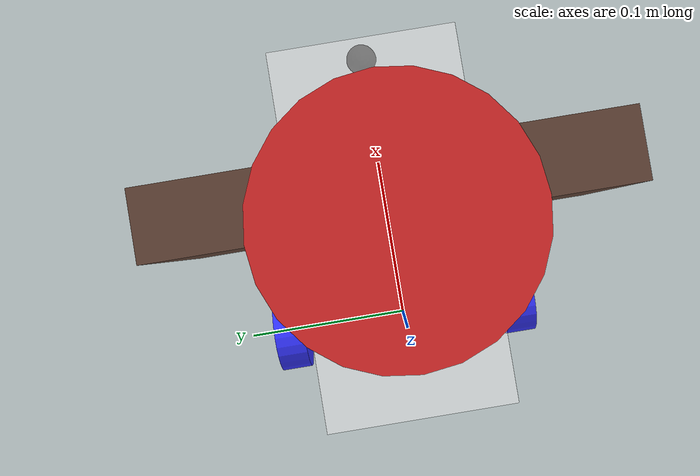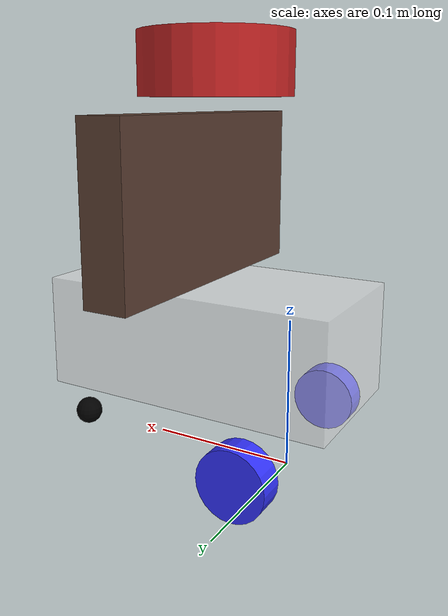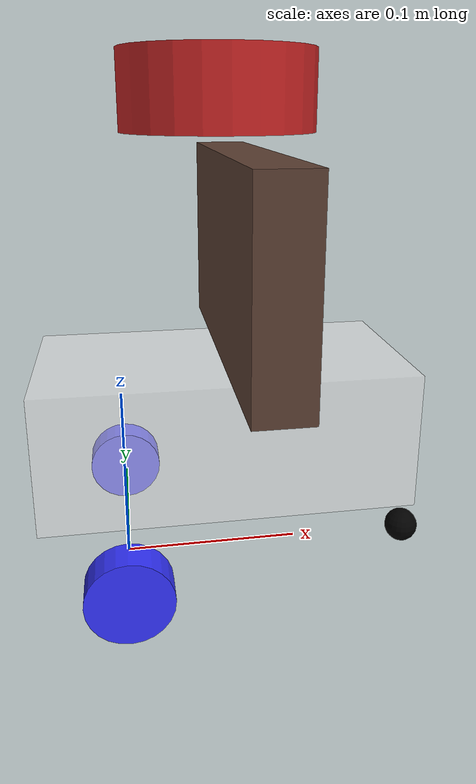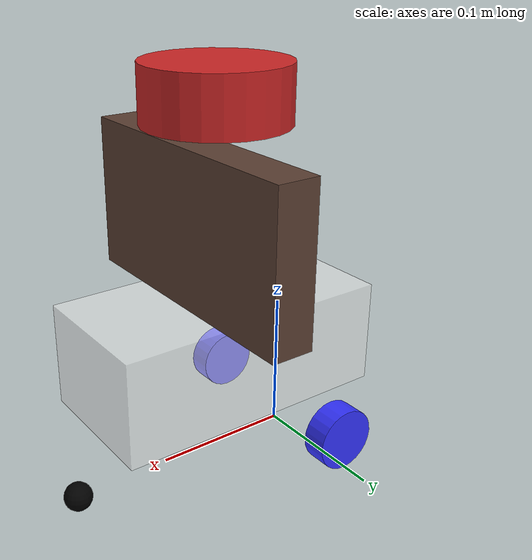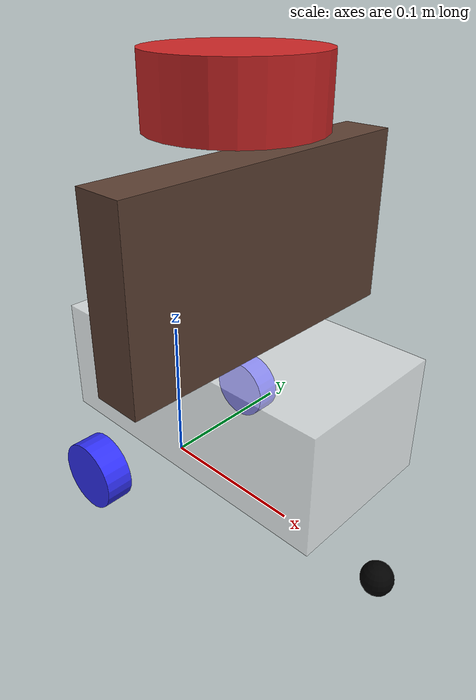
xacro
<?xml version="1.0"?>
<robot xmlns:xacro="http://www.ros.org/wiki/xacro"  name="robot">

   <xacro:include filename="robot_core.xacro" />
   <xacro:include filename="ros2_control.xacro" />
   <xacro:include filename="lidar.xacro" />

</robot>

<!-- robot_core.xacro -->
<robot xmlns:xacro="http://www.ros.org/wiki/xacro">

<xacro:include filename="inertial_macros.xacro" />

<material name="white">
    <color rgba="1 1 1 0.5"/>
</material>
<material name="orange">
    <color rgba="1 0.3 0.1 1"/>
</material>
<material name="blue">
    <color rgba="0.2 0.2 1 1"/>
</material>
<material name="black">
    <color rgba="0 0 0 1"/>
</material>
<material name="brown">
    <color rgba="0.36 0.25 0.20 1"/>
</material>

<link name="base_link">
</link>

<joint name="chassis_joint" type="fixed">
    <parent link="base_link"/>
    <child link="chassis"/>
    <origin xyz="-0.045 0 0.045"/>
</joint>

<link name="chassis">
    <visual>
        <origin xyz="0.1 0 0.0375" rpy="0 0 0"/>
        <geometry>
            <!--größe des chassis -->
            <box size="0.2 0.1 0.075"/>
        </geometry>
        <material name="white"/>
    </visual>
    <collision>
        <origin xyz="0.1 0 0.0375" rpy="0 0 0"/>
        <geometry>
            <box size="0.2 0.1 0.075"/>
        </geometry>
    </collision>
    <xacro:inertial_box mass="0.3518" x="0.2" y="0.1" z="0.075">
        <origin xyz="0.1 0 0.0375" rpy="0 0 0"/>
    </xacro:inertial_box>
</link>

<gazebo reference="chassis">
     <material>Gazebo/White</material>
</gazebo>

<joint name="rahmen_joint" type="fixed">
    <parent link="chassis"/>
    <child link="rahmen"/>
    <origin xyz="0.1 0 0.075"/>
</joint>

<link name="rahmen">
    <visual>
        <origin xyz="0.015 0 0.055" rpy="0 0 0"/>
        <geometry>
            <!--größe des rahmens -->
            <box size="0.03 0.2 0.11"/>
        </geometry>
        <material name="brown"/>
    </visual>
    <collision>
        <origin xyz="0.015 0 0.055" rpy="0 0 0"/>
        <geometry>
            <box size="0.03 0.2 0.11"/>
        </geometry>
    </collision>
    <xacro:inertial_box mass="0.272" x="0.03" y="0.2" z="0.11">
        <origin xyz="0.015 0 0.055" rpy="0 0 0"/>
    </xacro:inertial_box>
</link>

<gazebo reference="rahmen">
   <visual>
     <material>
     <ambient>0.7 0.56 0 1</ambient> <!-- Blue ambient color -->
      <diffuse>0.7 0.56 0 1</diffuse>
      <specular>0.7 0.56 0 1</specular>
     </material>
     </visual>
</gazebo>

<!-- LEFT WHEEL -->

<joint name="left_wheel_joint" type="continuous">
    <parent link="base_link"/>
    <child link="left_wheel"/>
    <origin xyz="0 0.071 0.0225" rpy="-${pi/2} 0 0"/>
    <axis xyz="0 0 1"/>
</joint>

<link name="left_wheel">
    <visual>
        <origin xyz="0 0 0" rpy="0 0 0"/>
        <geometry>
            <cylinder length="0.018" radius="0.0225" />
        </geometry>
        <material name="blue"/>
    </visual>
    <collision>
        <origin xyz="0 0 0" rpy="0 0 0"/>
        <geometry>
            <cylinder length="0.018" radius="0.0225" />
        </geometry>
    </collision>
    <xacro:inertial_cylinder mass="0.014" length="0.018" radius="0.0225">
            <origin xyz="0 0 0" rpy="0 0 0"/>
    </xacro:inertial_cylinder>
</link>

<gazebo reference="left_wheel">
    <material>Gazebo/Blue</material>
</gazebo>

<!-- RIGHT WHEEL -->

<joint name="right_wheel_joint" type="continuous">
    <parent link="base_link"/>
    <child link="right_wheel"/>
    <origin xyz="0 -0.071 0.0225" rpy="${pi/2} 0 0"/>
    <axis xyz="0 0 -1"/>
</joint>

<link name="right_wheel">
    <visual>
        <origin xyz="0 0 0" rpy="0 0 0"/>
        <geometry>
            <cylinder length="0.018" radius="0.0225" />
        </geometry>
        <material name="blue"/>
    </visual>
    <collision>
        <origin xyz="0 0 0" rpy="0 0 0"/>
        <geometry>
            <cylinder length="0.018" radius="0.0225" />
        </geometry>
    </collision>
    <xacro:inertial_cylinder mass="0.014" length="0.018" radius="0.0225">
            <origin xyz="0 0 0" rpy="0 0 0"/>
    </xacro:inertial_cylinder>
</link>

<gazebo reference="right_wheel">
    <material>Gazebo/Blue</material>
</gazebo>

<!-- CASTER WHEEL -->

<joint name="caster_wheel_joint" type="fixed">
    <parent link="chassis"/>
    <child link="caster_wheel"/>
    <origin xyz="${0.2 + 0.015} 0 -0.045" rpy="0 0 0"/>
</joint>

<link name="caster_wheel">
    <visual>
        <origin xyz="0 0 0" rpy="0 0 0"/>
        <geometry>
            <sphere radius="0.01" />
        </geometry>
        <material name="black"/>
    </visual>
    <collision>
        <origin xyz="0 0 0" rpy="0 0 0"/>
        <geometry>
            <sphere radius="0.01" />
        </geometry>
    </collision>
    <xacro:inertial_sphere mass="0.024" radius="0.01">
            <origin xyz="0 0 0" rpy="0 0 0"/>
    </xacro:inertial_sphere>
</link>

<gazebo reference="caster_wheel">
    <material>Gazebo/Black</material>
</gazebo>

<gazebo reference="caster_wheel">
    <material>Gazebo/Black</material>
    <mu1 value="0.001"/>
    <mu2 value="0.001"/>
</gazebo>

</robot>

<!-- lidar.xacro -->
<robot xmlns:xacro="http://www.ros.org/wiki/xacro" >

    <joint name="laser_joint" type="fixed">
        <parent link="rahmen"/>
        <child link="laser_frame"/>
        <origin xyz="0 0 ${0.11 + 0.03}" rpy="0 0 0"/>
    </joint>

    <link name="laser_frame">
        <visual>
            <geometry>
                <cylinder radius="0.05" length="0.04"/>
            </geometry>
            <material name="red"/>
        </visual>
        <collision>
            <geometry>
                <cylinder radius="0.05" length="0.04"/>
            </geometry>
        </collision>
        <xacro:inertial_cylinder mass="0.1" length="0.04" radius="0.05">
            <origin xyz="0 0 0" rpy="0 0 0"/>
        </xacro:inertial_cylinder>
    </link>

    <gazebo reference="laser_frame">
        <material>Gazebo/Red</material>

        <sensor name="laser" type="ray">
            <pose> 0 0 0 0 0 0 </pose>
            <visualize>true</visualize>
            <update_rate>10</update_rate>
            <ray>
                <scan>
                    <horizontal>
                        <samples>360</samples>
                        <min_angle>-3.14</min_angle>
                        <max_angle>3.14</max_angle>
                    </horizontal>
                </scan>
                <range>
                    <min>0.3</min>
                    <max>12</max>
                </range>
            </ray>
            <plugin name="laser_controller" filename="libgazebo_ros_ray_sensor.so">
                <ros>
                    <argument>~/out:=scan</argument>
                </ros>
                <output_type>sensor_msgs/LaserScan</output_type>
                <frame_name>laser_frame</frame_name>
            </plugin>
        </sensor>
    </gazebo>

</robot>
